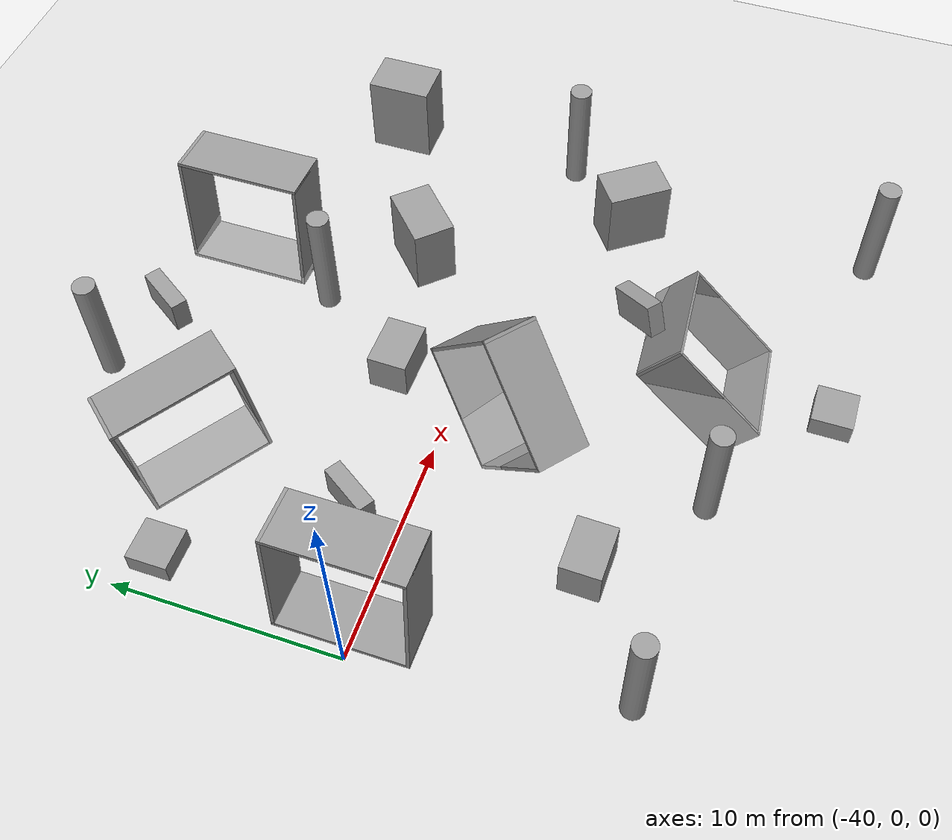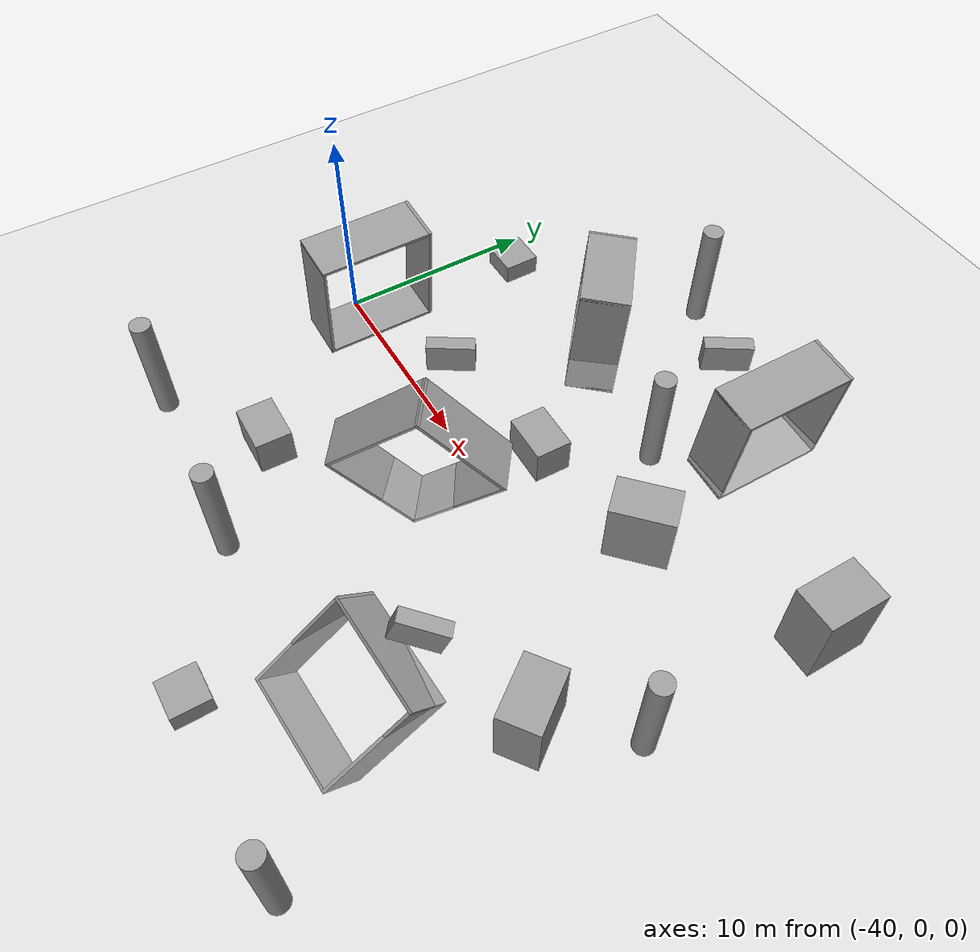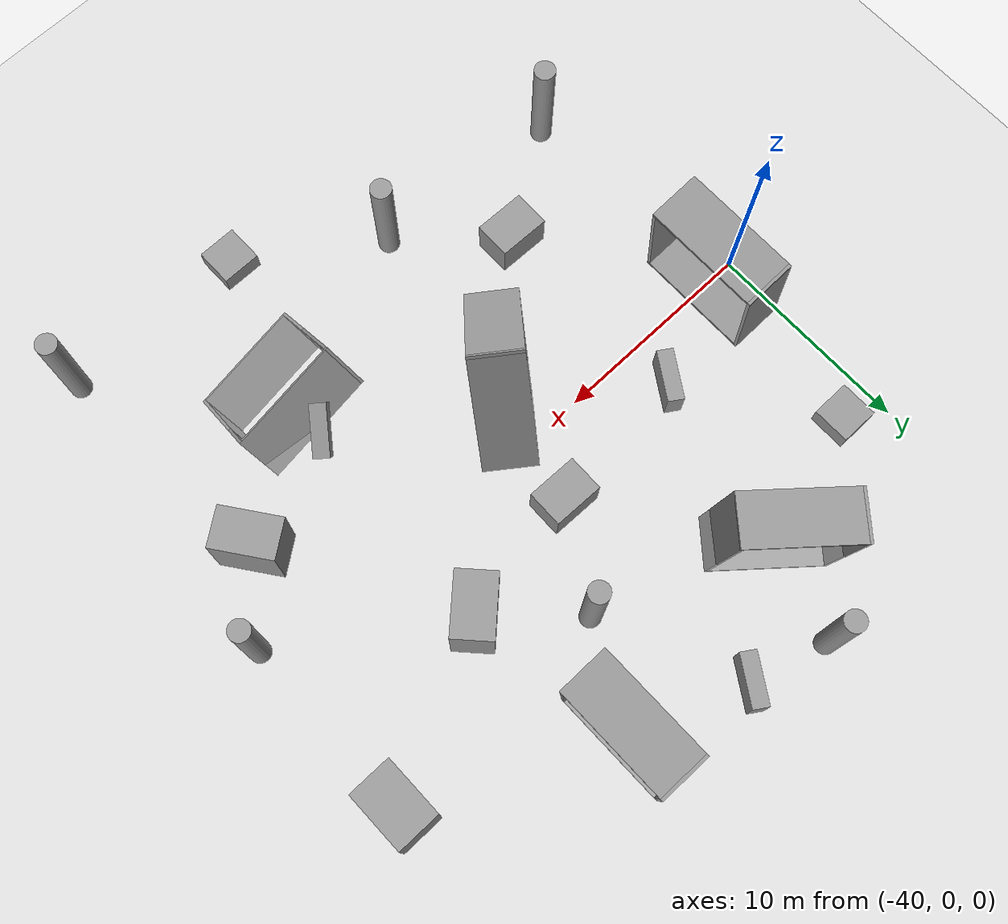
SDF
<sdf version="1.6">
 <world name="default">
  <model name="ground_plane">
   <static>1</static>
   <link name="link">
    <collision name="collision">
     <geometry><plane><normal>0 0 1</normal><size>100 100</size></plane></geometry>
     <surface><friction><ode><mu>100</mu><mu2>50</mu2></ode></friction></surface>
    </collision>
    <visual name="visual">
     <cast_shadows>0</cast_shadows>
     <geometry><plane><normal>0 0 1</normal><size>100 100</size></plane></geometry>
     <material>
      <script><uri>file://media/materials/scripts/gazebo.material</uri><name>Gazebo/Grey</name></script>
     </material>
    </visual>
   </link>
  </model>
  <model name="unit_box_2">
   <pose>-12.2461 7.859 1.95434 1e-06 0 -0.00036</pose>
   <link name="link">
    <inertial>
     <mass>1</mass>
     <inertia>
      <ixx>0.166667</ixx>
      <ixy>0</ixy>
      <ixz>0</ixz>
      <iyy>0.166667</iyy>
      <iyz>0</iyz>
      <izz>0.166667</izz>
     </inertia>
    </inertial>
    <collision name="collision"><geometry><box><size>2.10727 2.95919 3.90868</size></box></geometry></collision>
    <visual name="visual">
     <geometry><box><size>2.10727 2.95919 3.90868</size></box></geometry>
     <material>
      <script><name>Gazebo/Grey</name><uri>file://media/materials/scripts/gazebo.material</uri></script>
     </material>
    </visual>
   </link>
  </model>
  <model name="unit_box_2_clone_1">
   <pose>-15.0529 -4.60285 1.66336 1e-06 -0 0.631429</pose>
   <link name="link">
    <inertial>
     <mass>1</mass>
     <inertia>
      <ixx>0.166667</ixx>
      <ixy>0</ixy>
      <ixz>0</ixz>
      <iyy>0.166667</iyy>
      <iyz>0</iyz>
      <izz>0.166667</izz>
     </inertia>
    </inertial>
    <collision name="collision"><geometry><box><size>1.91266 2.95919 3.32673</size></box></geometry></collision>
    <visual name="visual">
     <geometry><box><size>1.91266 2.95919 3.32673</size></box></geometry>
     <material>
      <script><name>Gazebo/Grey</name><uri>file://media/materials/scripts/gazebo.material</uri></script>
     </material>
    </visual>
   </link>
  </model>
  <model name="unit_cylinder_clone_9_clone_5_clone">
   <pose>-12.241 -1.09471 2.75253 0 -0 0.004218</pose>
   <link name="link">
    <inertial>
     <mass>1</mass>
     <inertia><ixx>0.145833</ixx><ixy>0</ixy><ixz>0</ixz><iyy>0.145833</iyy><iyz>0</iyz><izz>0.125</izz></inertia>
    </inertial>
    <collision name="collision">
     <geometry><cylinder><radius>0.5</radius><length>5.50507</length></cylinder></geometry>
    </collision>
    <visual name="visual">
     <geometry><cylinder><radius>0.5</radius><length>5.50507</length></cylinder></geometry>
     <material>
      <script><name>Gazebo/Grey</name><uri>file://media/materials/scripts/gazebo.material</uri></script>
     </material>
    </visual>
   </link>
  </model>
  <model name="vRoom_clone_3_clone_clone_9_clone_2_clone_0">
   <link name="Wall_0">
    <pose>-2.8 -0 -1e-06 -0 -0 -1.5708</pose>
    <velocity_decay><linear>0</linear><angular>0</angular></velocity_decay>
    <visual name="Wall_0_Visual">
     <pose>0 0 1.25 0 -0 0</pose>
     <geometry><box><size>5.75 0.15 2.5</size></box></geometry>
     <material>
      <script><uri>file://media/materials/scripts/gazebo.material</uri><name>Gazebo/Grey</name></script>
      <ambient>1 1 1 1</ambient>
     </material>
    </visual>
    <collision name="Wall_0_Collision">
     <pose>0 0 1.25 0 -0 0</pose>
     <geometry><box><size>5.75 0.15 2.5</size></box></geometry>
     <surface>
      <friction>
       <ode><mu>1</mu><mu2>1</mu2><fdir1>0 0 0</fdir1><slip1>0</slip1><slip2>0</slip2></ode>
       <torsional>
        <coefficient>1</coefficient>
        <patch_radius>0</patch_radius>
        <surface_radius>0</surface_radius>
        <use_patch_radius>1</use_patch_radius>
        <ode><slip>0</slip></ode>
       </torsional>
      </friction>
      <bounce><restitution_coefficient>0</restitution_coefficient><threshold>1e+06</threshold></bounce>
      <contact>
       <collide_without_contact>0</collide_without_contact>
       <collide_without_contact_bitmask>1</collide_without_contact_bitmask>
       <collide_bitmask>1</collide_bitmask>
       <ode>
        <soft_cfm>0</soft_cfm>
        <soft_erp>0.2</soft_erp>
        <kp>1e+13</kp>
        <kd>1</kd>
        <max_vel>0.01</max_vel>
        <min_depth>0</min_depth>
       </ode>
       <bullet>
        <split_impulse>1</split_impulse>
        <split_impulse_penetration_threshold>-0.01</split_impulse_penetration_threshold>
        <soft_cfm>0</soft_cfm>
        <soft_erp>0.2</soft_erp>
        <kp>1e+13</kp>
        <kd>1</kd>
       </bullet>
      </contact>
     </surface>
    </collision>
   </link>
   <link name="Wall_1">
    <pose>2e-06 -2.8 2e-06 0 -0 0</pose>
    <velocity_decay><linear>0</linear><angular>0</angular></velocity_decay>
    <visual name="Wall_1_Visual">
     <pose>0 0 1.25 0 -0 0</pose>
     <geometry><box><size>5.75 0.15 2.5</size></box></geometry>
     <material>
      <script><uri>file://media/materials/scripts/gazebo.material</uri><name>Gazebo/Grey</name></script>
      <ambient>1 1 1 1</ambient>
     </material>
    </visual>
    <collision name="Wall_1_Collision">
     <pose>0 0 1.25 0 -0 0</pose>
     <geometry><box><size>5.75 0.15 2.5</size></box></geometry>
     <surface>
      <friction>
       <ode><mu>1</mu><mu2>1</mu2><fdir1>0 0 0</fdir1><slip1>0</slip1><slip2>0</slip2></ode>
       <torsional>
        <coefficient>1</coefficient>
        <patch_radius>0</patch_radius>
        <surface_radius>0</surface_radius>
        <use_patch_radius>1</use_patch_radius>
        <ode><slip>0</slip></ode>
       </torsional>
      </friction>
      <bounce><restitution_coefficient>0</restitution_coefficient><threshold>1e+06</threshold></bounce>
      <contact>
       <collide_without_contact>0</collide_without_contact>
       <collide_without_contact_bitmask>1</collide_without_contact_bitmask>
       <collide_bitmask>1</collide_bitmask>
       <ode>
        <soft_cfm>0</soft_cfm>
        <soft_erp>0.2</soft_erp>
        <kp>1e+13</kp>
        <kd>1</kd>
        <max_vel>0.01</max_vel>
        <min_depth>0</min_depth>
       </ode>
       <bullet>
        <split_impulse>1</split_impulse>
        <split_impulse_penetration_threshold>-0.01</split_impulse_penetration_threshold>
        <soft_cfm>0</soft_cfm>
        <soft_erp>0.2</soft_erp>
        <kp>1e+13</kp>
        <kd>1</kd>
       </bullet>
      </contact>
     </surface>
    </collision>
   </link>
   <link name="Wall_2">
    <pose>2.8 0 1e-06 0 -0 1.5708</pose>
    <velocity_decay><linear>0</linear><angular>0</angular></velocity_decay>
    <visual name="Wall_2_Visual">
     <pose>0 0 1.25 0 -0 0</pose>
     <geometry><box><size>5.75 0.15 2.5</size></box></geometry>
     <material>
      <script><uri>file://media/materials/scripts/gazebo.material</uri><name>Gazebo/Grey</name></script>
      <ambient>1 1 1 1</ambient>
     </material>
    </visual>
    <collision name="Wall_2_Collision">
     <pose>0 0 1.25 0 -0 0</pose>
     <geometry><box><size>5.75 0.15 2.5</size></box></geometry>
     <surface>
      <friction>
       <ode><mu>1</mu><mu2>1</mu2><fdir1>0 0 0</fdir1><slip1>0</slip1><slip2>0</slip2></ode>
       <torsional>
        <coefficient>1</coefficient>
        <patch_radius>0</patch_radius>
        <surface_radius>0</surface_radius>
        <use_patch_radius>1</use_patch_radius>
        <ode><slip>0</slip></ode>
       </torsional>
      </friction>
      <bounce><restitution_coefficient>0</restitution_coefficient><threshold>1e+06</threshold></bounce>
      <contact>
       <collide_without_contact>0</collide_without_contact>
       <collide_without_contact_bitmask>1</collide_without_contact_bitmask>
       <collide_bitmask>1</collide_bitmask>
       <ode>
        <soft_cfm>0</soft_cfm>
        <soft_erp>0.2</soft_erp>
        <kp>1e+13</kp>
        <kd>1</kd>
        <max_vel>0.01</max_vel>
        <min_depth>0</min_depth>
       </ode>
       <bullet>
        <split_impulse>1</split_impulse>
        <split_impulse_penetration_threshold>-0.01</split_impulse_penetration_threshold>
        <soft_cfm>0</soft_cfm>
        <soft_erp>0.2</soft_erp>
        <kp>1e+13</kp>
        <kd>1</kd>
       </bullet>
      </contact>
     </surface>
    </collision>
   </link>
   <link name="Wall_3">
    <pose>-2e-06 2.8 -2e-06 0 -0 3.14159</pose>
    <velocity_decay><linear>0</linear><angular>0</angular></velocity_decay>
    <visual name="Wall_3_Visual">
     <pose>0 0 1.25 0 -0 0</pose>
     <geometry><box><size>5.75 0.15 2.5</size></box></geometry>
     <material>
      <script><uri>file://media/materials/scripts/gazebo.material</uri><name>Gazebo/Grey</name></script>
      <ambient>1 1 1 1</ambient>
     </material>
    </visual>
    <collision name="Wall_3_Collision">
     <pose>0 0 1.25 0 -0 0</pose>
     <geometry><box><size>5.75 0.15 2.5</size></box></geometry>
     <surface>
      <friction>
       <ode><mu>1</mu><mu2>1</mu2><fdir1>0 0 0</fdir1><slip1>0</slip1><slip2>0</slip2></ode>
       <torsional>
        <coefficient>1</coefficient>
        <patch_radius>0</patch_radius>
        <surface_radius>0</surface_radius>
        <use_patch_radius>1</use_patch_radius>
        <ode><slip>0</slip></ode>
       </torsional>
      </friction>
      <bounce><restitution_coefficient>0</restitution_coefficient><threshold>1e+06</threshold></bounce>
      <contact>
       <collide_without_contact>0</collide_without_contact>
       <collide_without_contact_bitmask>1</collide_without_contact_bitmask>
       <collide_bitmask>1</collide_bitmask>
       <ode>
        <soft_cfm>0</soft_cfm>
        <soft_erp>0.2</soft_erp>
        <kp>1e+13</kp>
        <kd>1</kd>
        <max_vel>0.01</max_vel>
        <min_depth>0</min_depth>
       </ode>
       <bullet>
        <split_impulse>1</split_impulse>
        <split_impulse_penetration_threshold>-0.01</split_impulse_penetration_threshold>
        <soft_cfm>0</soft_cfm>
        <soft_erp>0.2</soft_erp>
        <kp>1e+13</kp>
        <kd>1</kd>
       </bullet>
      </contact>
     </surface>
    </collision>
   </link>
   <static>1</static>
   <pose>-20.5223 -10.7964 -0.348991 2.375 -0.169882 -3.06562</pose>
  </model>
  <model name="vRoom_clone_3_clone_clone_9_clone_3">
   <link name="Wall_0">
    <pose>-2.8 -0 -1e-06 -0 -0 -1.5708</pose>
    <velocity_decay><linear>0</linear><angular>0</angular></velocity_decay>
    <visual name="Wall_0_Visual">
     <pose>0 0 1.25 0 -0 0</pose>
     <geometry><box><size>5.75 0.15 2.5</size></box></geometry>
     <material>
      <script><uri>file://media/materials/scripts/gazebo.material</uri><name>Gazebo/Grey</name></script>
      <ambient>1 1 1 1</ambient>
     </material>
    </visual>
    <collision name="Wall_0_Collision">
     <pose>0 0 1.25 0 -0 0</pose>
     <geometry><box><size>5.75 0.15 2.5</size></box></geometry>
     <surface>
      <friction>
       <ode><mu>1</mu><mu2>1</mu2><fdir1>0 0 0</fdir1><slip1>0</slip1><slip2>0</slip2></ode>
       <torsional>
        <coefficient>1</coefficient>
        <patch_radius>0</patch_radius>
        <surface_radius>0</surface_radius>
        <use_patch_radius>1</use_patch_radius>
        <ode><slip>0</slip></ode>
       </torsional>
      </friction>
      <bounce><restitution_coefficient>0</restitution_coefficient><threshold>1e+06</threshold></bounce>
      <contact>
       <collide_without_contact>0</collide_without_contact>
       <collide_without_contact_bitmask>1</collide_without_contact_bitmask>
       <collide_bitmask>1</collide_bitmask>
       <ode>
        <soft_cfm>0</soft_cfm>
        <soft_erp>0.2</soft_erp>
        <kp>1e+13</kp>
        <kd>1</kd>
        <max_vel>0.01</max_vel>
        <min_depth>0</min_depth>
       </ode>
       <bullet>
        <split_impulse>1</split_impulse>
        <split_impulse_penetration_threshold>-0.01</split_impulse_penetration_threshold>
        <soft_cfm>0</soft_cfm>
        <soft_erp>0.2</soft_erp>
        <kp>1e+13</kp>
        <kd>1</kd>
       </bullet>
      </contact>
     </surface>
    </collision>
   </link>
   <link name="Wall_1">
    <pose>2e-06 -2.8 2e-06 0 -0 0</pose>
    <velocity_decay><linear>0</linear><angular>0</angular></velocity_decay>
    <visual name="Wall_1_Visual">
     <pose>0 0 1.25 0 -0 0</pose>
     <geometry><box><size>5.75 0.15 2.5</size></box></geometry>
     <material>
      <script><uri>file://media/materials/scripts/gazebo.material</uri><name>Gazebo/Grey</name></script>
      <ambient>1 1 1 1</ambient>
     </material>
    </visual>
    <collision name="Wall_1_Collision">
     <pose>0 0 1.25 0 -0 0</pose>
     <geometry><box><size>5.75 0.15 2.5</size></box></geometry>
     <surface>
      <friction>
       <ode><mu>1</mu><mu2>1</mu2><fdir1>0 0 0</fdir1><slip1>0</slip1><slip2>0</slip2></ode>
       <torsional>
        <coefficient>1</coefficient>
        <patch_radius>0</patch_radius>
        <surface_radius>0</surface_radius>
        <use_patch_radius>1</use_patch_radius>
        <ode><slip>0</slip></ode>
       </torsional>
      </friction>
      <bounce><restitution_coefficient>0</restitution_coefficient><threshold>1e+06</threshold></bounce>
      <contact>
       <collide_without_contact>0</collide_without_contact>
       <collide_without_contact_bitmask>1</collide_without_contact_bitmask>
       <collide_bitmask>1</collide_bitmask>
       <ode>
        <soft_cfm>0</soft_cfm>
        <soft_erp>0.2</soft_erp>
        <kp>1e+13</kp>
        <kd>1</kd>
        <max_vel>0.01</max_vel>
        <min_depth>0</min_depth>
       </ode>
       <bullet>
        <split_impulse>1</split_impulse>
        <split_impulse_penetration_threshold>-0.01</split_impulse_penetration_threshold>
        <soft_cfm>0</soft_cfm>
        <soft_erp>0.2</soft_erp>
        <kp>1e+13</kp>
        <kd>1</kd>
       </bullet>
      </contact>
     </surface>
    </collision>
   </link>
   <link name="Wall_2">
    <pose>2.8 0 1e-06 0 -0 1.5708</pose>
    <velocity_decay><linear>0</linear><angular>0</angular></velocity_decay>
    <visual name="Wall_2_Visual">
     <pose>0 0 1.25 0 -0 0</pose>
     <geometry><box><size>5.75 0.15 2.5</size></box></geometry>
     <material>
      <script><uri>file://media/materials/scripts/gazebo.material</uri><name>Gazebo/Grey</name></script>
      <ambient>1 1 1 1</ambient>
     </material>
    </visual>
    <collision name="Wall_2_Collision">
     <pose>0 0 1.25 0 -0 0</pose>
     <geometry><box><size>5.75 0.15 2.5</size></box></geometry>
     <surface>
      <friction>
       <ode><mu>1</mu><mu2>1</mu2><fdir1>0 0 0</fdir1><slip1>0</slip1><slip2>0</slip2></ode>
       <torsional>
        <coefficient>1</coefficient>
        <patch_radius>0</patch_radius>
        <surface_radius>0</surface_radius>
        <use_patch_radius>1</use_patch_radius>
        <ode><slip>0</slip></ode>
       </torsional>
      </friction>
      <bounce><restitution_coefficient>0</restitution_coefficient><threshold>1e+06</threshold></bounce>
      <contact>
       <collide_without_contact>0</collide_without_contact>
       <collide_without_contact_bitmask>1</collide_without_contact_bitmask>
       <collide_bitmask>1</collide_bitmask>
       <ode>
        <soft_cfm>0</soft_cfm>
        <soft_erp>0.2</soft_erp>
        <kp>1e+13</kp>
        <kd>1</kd>
        <max_vel>0.01</max_vel>
        <min_depth>0</min_depth>
       </ode>
       <bullet>
        <split_impulse>1</split_impulse>
        <split_impulse_penetration_threshold>-0.01</split_impulse_penetration_threshold>
        <soft_cfm>0</soft_cfm>
        <soft_erp>0.2</soft_erp>
        <kp>1e+13</kp>
        <kd>1</kd>
       </bullet>
      </contact>
     </surface>
    </collision>
   </link>
   <link name="Wall_3">
    <pose>-2e-06 2.8 -2e-06 0 -0 3.14159</pose>
    <velocity_decay><linear>0</linear><angular>0</angular></velocity_decay>
    <visual name="Wall_3_Visual">
     <pose>0 0 1.25 0 -0 0</pose>
     <geometry><box><size>5.75 0.15 2.5</size></box></geometry>
     <material>
      <script><uri>file://media/materials/scripts/gazebo.material</uri><name>Gazebo/Grey</name></script>
      <ambient>1 1 1 1</ambient>
     </material>
    </visual>
    <collision name="Wall_3_Collision">
     <pose>0 0 1.25 0 -0 0</pose>
     <geometry><box><size>5.75 0.15 2.5</size></box></geometry>
     <surface>
      <friction>
       <ode><mu>1</mu><mu2>1</mu2><fdir1>0 0 0</fdir1><slip1>0</slip1><slip2>0</slip2></ode>
       <torsional>
        <coefficient>1</coefficient>
        <patch_radius>0</patch_radius>
        <surface_radius>0</surface_radius>
        <use_patch_radius>1</use_patch_radius>
        <ode><slip>0</slip></ode>
       </torsional>
      </friction>
      <bounce><restitution_coefficient>0</restitution_coefficient><threshold>1e+06</threshold></bounce>
      <contact>
       <collide_without_contact>0</collide_without_contact>
       <collide_without_contact_bitmask>1</collide_without_contact_bitmask>
       <collide_bitmask>1</collide_bitmask>
       <ode>
        <soft_cfm>0</soft_cfm>
        <soft_erp>0.2</soft_erp>
        <kp>1e+13</kp>
        <kd>1</kd>
        <max_vel>0.01</max_vel>
        <min_depth>0</min_depth>
       </ode>
       <bullet>
        <split_impulse>1</split_impulse>
        <split_impulse_penetration_threshold>-0.01</split_impulse_penetration_threshold>
        <soft_cfm>0</soft_cfm>
        <soft_erp>0.2</soft_erp>
        <kp>1e+13</kp>
        <kd>1</kd>
       </bullet>
      </contact>
     </surface>
    </collision>
   </link>
   <static>1</static>
   <pose>-20.1202 12.0479 2.16038 4e-06 -1.47998 -7e-06</pose>
  </model>
  <model name="vRoom_clone_3_clone_clone_9_clone_clone_0">
   <link name="Wall_0">
    <pose>-2.8 -0 -1e-06 -0 -0 -1.5708</pose>
    <velocity_decay><linear>0</linear><angular>0</angular></velocity_decay>
    <visual name="Wall_0_Visual">
     <pose>0 0 1.25 0 -0 0</pose>
     <geometry><box><size>5.75 0.15 2.5</size></box></geometry>
     <material>
      <script><uri>file://media/materials/scripts/gazebo.material</uri><name>Gazebo/Grey</name></script>
      <ambient>1 1 1 1</ambient>
     </material>
    </visual>
    <collision name="Wall_0_Collision">
     <pose>0 0 1.25 0 -0 0</pose>
     <geometry><box><size>5.75 0.15 2.5</size></box></geometry>
     <surface>
      <friction>
       <ode><mu>1</mu><mu2>1</mu2><fdir1>0 0 0</fdir1><slip1>0</slip1><slip2>0</slip2></ode>
       <torsional>
        <coefficient>1</coefficient>
        <patch_radius>0</patch_radius>
        <surface_radius>0</surface_radius>
        <use_patch_radius>1</use_patch_radius>
        <ode><slip>0</slip></ode>
       </torsional>
      </friction>
      <bounce><restitution_coefficient>0</restitution_coefficient><threshold>1e+06</threshold></bounce>
      <contact>
       <collide_without_contact>0</collide_without_contact>
       <collide_without_contact_bitmask>1</collide_without_contact_bitmask>
       <collide_bitmask>1</collide_bitmask>
       <ode>
        <soft_cfm>0</soft_cfm>
        <soft_erp>0.2</soft_erp>
        <kp>1e+13</kp>
        <kd>1</kd>
        <max_vel>0.01</max_vel>
        <min_depth>0</min_depth>
       </ode>
       <bullet>
        <split_impulse>1</split_impulse>
        <split_impulse_penetration_threshold>-0.01</split_impulse_penetration_threshold>
        <soft_cfm>0</soft_cfm>
        <soft_erp>0.2</soft_erp>
        <kp>1e+13</kp>
        <kd>1</kd>
       </bullet>
      </contact>
     </surface>
    </collision>
   </link>
   <link name="Wall_1">
    <pose>2e-06 -2.8 2e-06 0 -0 0</pose>
    <velocity_decay><linear>0</linear><angular>0</angular></velocity_decay>
    <visual name="Wall_1_Visual">
     <pose>0 0 1.25 0 -0 0</pose>
     <geometry><box><size>5.75 0.15 2.5</size></box></geometry>
     <material>
      <script><uri>file://media/materials/scripts/gazebo.material</uri><name>Gazebo/Grey</name></script>
      <ambient>1 1 1 1</ambient>
     </material>
    </visual>
    <collision name="Wall_1_Collision">
     <pose>0 0 1.25 0 -0 0</pose>
     <geometry><box><size>5.75 0.15 2.5</size></box></geometry>
     <surface>
      <friction>
       <ode><mu>1</mu><mu2>1</mu2><fdir1>0 0 0</fdir1><slip1>0</slip1><slip2>0</slip2></ode>
       <torsional>
        <coefficient>1</coefficient>
        <patch_radius>0</patch_radius>
        <surface_radius>0</surface_radius>
        <use_patch_radius>1</use_patch_radius>
        <ode><slip>0</slip></ode>
       </torsional>
      </friction>
      <bounce><restitution_coefficient>0</restitution_coefficient><threshold>1e+06</threshold></bounce>
      <contact>
       <collide_without_contact>0</collide_without_contact>
       <collide_without_contact_bitmask>1</collide_without_contact_bitmask>
       <collide_bitmask>1</collide_bitmask>
       <ode>
        <soft_cfm>0</soft_cfm>
        <soft_erp>0.2</soft_erp>
        <kp>1e+13</kp>
        <kd>1</kd>
        <max_vel>0.01</max_vel>
        <min_depth>0</min_depth>
       </ode>
       <bullet>
        <split_impulse>1</split_impulse>
        <split_impulse_penetration_threshold>-0.01</split_impulse_penetration_threshold>
        <soft_cfm>0</soft_cfm>
        <soft_erp>0.2</soft_erp>
        <kp>1e+13</kp>
        <kd>1</kd>
       </bullet>
      </contact>
     </surface>
    </collision>
   </link>
   <link name="Wall_2">
    <pose>2.8 0 1e-06 0 -0 1.5708</pose>
    <velocity_decay><linear>0</linear><angular>0</angular></velocity_decay>
    <visual name="Wall_2_Visual">
     <pose>0 0 1.25 0 -0 0</pose>
     <geometry><box><size>5.75 0.15 2.5</size></box></geometry>
     <material>
      <script><uri>file://media/materials/scripts/gazebo.material</uri><name>Gazebo/Grey</name></script>
      <ambient>1 1 1 1</ambient>
     </material>
    </visual>
    <collision name="Wall_2_Collision">
     <pose>0 0 1.25 0 -0 0</pose>
     <geometry><box><size>5.75 0.15 2.5</size></box></geometry>
     <surface>
      <friction>
       <ode><mu>1</mu><mu2>1</mu2><fdir1>0 0 0</fdir1><slip1>0</slip1><slip2>0</slip2></ode>
       <torsional>
        <coefficient>1</coefficient>
        <patch_radius>0</patch_radius>
        <surface_radius>0</surface_radius>
        <use_patch_radius>1</use_patch_radius>
        <ode><slip>0</slip></ode>
       </torsional>
      </friction>
      <bounce><restitution_coefficient>0</restitution_coefficient><threshold>1e+06</threshold></bounce>
      <contact>
       <collide_without_contact>0</collide_without_contact>
       <collide_without_contact_bitmask>1</collide_without_contact_bitmask>
       <collide_bitmask>1</collide_bitmask>
       <ode>
        <soft_cfm>0</soft_cfm>
        <soft_erp>0.2</soft_erp>
        <kp>1e+13</kp>
        <kd>1</kd>
        <max_vel>0.01</max_vel>
        <min_depth>0</min_depth>
       </ode>
       <bullet>
        <split_impulse>1</split_impulse>
        <split_impulse_penetration_threshold>-0.01</split_impulse_penetration_threshold>
        <soft_cfm>0</soft_cfm>
        <soft_erp>0.2</soft_erp>
        <kp>1e+13</kp>
        <kd>1</kd>
       </bullet>
      </contact>
     </surface>
    </collision>
   </link>
   <link name="Wall_3">
    <pose>-2e-06 2.8 -2e-06 0 -0 3.14159</pose>
    <velocity_decay><linear>0</linear><angular>0</angular></velocity_decay>
    <visual name="Wall_3_Visual">
     <pose>0 0 1.25 0 -0 0</pose>
     <geometry><box><size>5.75 0.15 2.5</size></box></geometry>
     <material>
      <script><uri>file://media/materials/scripts/gazebo.material</uri><name>Gazebo/Grey</name></script>
      <ambient>1 1 1 1</ambient>
     </material>
    </visual>
    <collision name="Wall_3_Collision">
     <pose>0 0 1.25 0 -0 0</pose>
     <geometry><box><size>5.75 0.15 2.5</size></box></geometry>
     <surface>
      <friction>
       <ode><mu>1</mu><mu2>1</mu2><fdir1>0 0 0</fdir1><slip1>0</slip1><slip2>0</slip2></ode>
       <torsional>
        <coefficient>1</coefficient>
        <patch_radius>0</patch_radius>
        <surface_radius>0</surface_radius>
        <use_patch_radius>1</use_patch_radius>
        <ode><slip>0</slip></ode>
       </torsional>
      </friction>
      <bounce><restitution_coefficient>0</restitution_coefficient><threshold>1e+06</threshold></bounce>
      <contact>
       <collide_without_contact>0</collide_without_contact>
       <collide_without_contact_bitmask>1</collide_without_contact_bitmask>
       <collide_bitmask>1</collide_bitmask>
       <ode>
        <soft_cfm>0</soft_cfm>
        <soft_erp>0.2</soft_erp>
        <kp>1e+13</kp>
        <kd>1</kd>
        <max_vel>0.01</max_vel>
        <min_depth>0</min_depth>
       </ode>
       <bullet>
        <split_impulse>1</split_impulse>
        <split_impulse_penetration_threshold>-0.01</split_impulse_penetration_threshold>
        <soft_cfm>0</soft_cfm>
        <soft_erp>0.2</soft_erp>
        <kp>1e+13</kp>
        <kd>1</kd>
       </bullet>
      </contact>
     </surface>
    </collision>
   </link>
   <static>1</static>
   <pose>-26.7767 -3.33195 2.16038 1.45974 -0.860248 -2.1368</pose>
  </model>
  <model name="vRoom_clone_3_clone_clone_9_clone_0_clone">
   <link name="Wall_0">
    <pose>-2.8 -0 -1e-06 -0 -0 -1.5708</pose>
    <velocity_decay><linear>0</linear><angular>0</angular></velocity_decay>
    <visual name="Wall_0_Visual">
     <pose>0 0 1.25 0 -0 0</pose>
     <geometry><box><size>5.75 0.15 2.5</size></box></geometry>
     <material>
      <script><uri>file://media/materials/scripts/gazebo.material</uri><name>Gazebo/Grey</name></script>
      <ambient>1 1 1 1</ambient>
     </material>
    </visual>
    <collision name="Wall_0_Collision">
     <pose>0 0 1.25 0 -0 0</pose>
     <geometry><box><size>5.75 0.15 2.5</size></box></geometry>
     <surface>
      <friction>
       <ode><mu>1</mu><mu2>1</mu2><fdir1>0 0 0</fdir1><slip1>0</slip1><slip2>0</slip2></ode>
       <torsional>
        <coefficient>1</coefficient>
        <patch_radius>0</patch_radius>
        <surface_radius>0</surface_radius>
        <use_patch_radius>1</use_patch_radius>
        <ode><slip>0</slip></ode>
       </torsional>
      </friction>
      <bounce><restitution_coefficient>0</restitution_coefficient><threshold>1e+06</threshold></bounce>
      <contact>
       <collide_without_contact>0</collide_without_contact>
       <collide_without_contact_bitmask>1</collide_without_contact_bitmask>
       <collide_bitmask>1</collide_bitmask>
       <ode>
        <soft_cfm>0</soft_cfm>
        <soft_erp>0.2</soft_erp>
        <kp>1e+13</kp>
        <kd>1</kd>
        <max_vel>0.01</max_vel>
        <min_depth>0</min_depth>
       </ode>
       <bullet>
        <split_impulse>1</split_impulse>
        <split_impulse_penetration_threshold>-0.01</split_impulse_penetration_threshold>
        <soft_cfm>0</soft_cfm>
        <soft_erp>0.2</soft_erp>
        <kp>1e+13</kp>
        <kd>1</kd>
       </bullet>
      </contact>
     </surface>
    </collision>
   </link>
   <link name="Wall_1">
    <pose>2e-06 -2.8 2e-06 0 -0 0</pose>
    <velocity_decay><linear>0</linear><angular>0</angular></velocity_decay>
    <visual name="Wall_1_Visual">
     <pose>0 0 1.25 0 -0 0</pose>
     <geometry><box><size>5.75 0.15 2.5</size></box></geometry>
     <material>
      <script><uri>file://media/materials/scripts/gazebo.material</uri><name>Gazebo/Grey</name></script>
      <ambient>1 1 1 1</ambient>
     </material>
    </visual>
    <collision name="Wall_1_Collision">
     <pose>0 0 1.25 0 -0 0</pose>
     <geometry><box><size>5.75 0.15 2.5</size></box></geometry>
     <surface>
      <friction>
       <ode><mu>1</mu><mu2>1</mu2><fdir1>0 0 0</fdir1><slip1>0</slip1><slip2>0</slip2></ode>
       <torsional>
        <coefficient>1</coefficient>
        <patch_radius>0</patch_radius>
        <surface_radius>0</surface_radius>
        <use_patch_radius>1</use_patch_radius>
        <ode><slip>0</slip></ode>
       </torsional>
      </friction>
      <bounce><restitution_coefficient>0</restitution_coefficient><threshold>1e+06</threshold></bounce>
      <contact>
       <collide_without_contact>0</collide_without_contact>
       <collide_without_contact_bitmask>1</collide_without_contact_bitmask>
       <collide_bitmask>1</collide_bitmask>
       <ode>
        <soft_cfm>0</soft_cfm>
        <soft_erp>0.2</soft_erp>
        <kp>1e+13</kp>
        <kd>1</kd>
        <max_vel>0.01</max_vel>
        <min_depth>0</min_depth>
       </ode>
       <bullet>
        <split_impulse>1</split_impulse>
        <split_impulse_penetration_threshold>-0.01</split_impulse_penetration_threshold>
        <soft_cfm>0</soft_cfm>
        <soft_erp>0.2</soft_erp>
        <kp>1e+13</kp>
        <kd>1</kd>
       </bullet>
      </contact>
     </surface>
    </collision>
   </link>
   <link name="Wall_2">
    <pose>2.8 0 1e-06 0 -0 1.5708</pose>
    <velocity_decay><linear>0</linear><angular>0</angular></velocity_decay>
    <visual name="Wall_2_Visual">
     <pose>0 0 1.25 0 -0 0</pose>
     <geometry><box><size>5.75 0.15 2.5</size></box></geometry>
     <material>
      <script><uri>file://media/materials/scripts/gazebo.material</uri><name>Gazebo/Grey</name></script>
      <ambient>1 1 1 1</ambient>
     </material>
    </visual>
    <collision name="Wall_2_Collision">
     <pose>0 0 1.25 0 -0 0</pose>
     <geometry><box><size>5.75 0.15 2.5</size></box></geometry>
     <surface>
      <friction>
       <ode><mu>1</mu><mu2>1</mu2><fdir1>0 0 0</fdir1><slip1>0</slip1><slip2>0</slip2></ode>
       <torsional>
        <coefficient>1</coefficient>
        <patch_radius>0</patch_radius>
        <surface_radius>0</surface_radius>
        <use_patch_radius>1</use_patch_radius>
        <ode><slip>0</slip></ode>
       </torsional>
      </friction>
      <bounce><restitution_coefficient>0</restitution_coefficient><threshold>1e+06</threshold></bounce>
      <contact>
       <collide_without_contact>0</collide_without_contact>
       <collide_without_contact_bitmask>1</collide_without_contact_bitmask>
       <collide_bitmask>1</collide_bitmask>
       <ode>
        <soft_cfm>0</soft_cfm>
        <soft_erp>0.2</soft_erp>
        <kp>1e+13</kp>
        <kd>1</kd>
        <max_vel>0.01</max_vel>
        <min_depth>0</min_depth>
       </ode>
       <bullet>
        <split_impulse>1</split_impulse>
        <split_impulse_penetration_threshold>-0.01</split_impulse_penetration_threshold>
        <soft_cfm>0</soft_cfm>
        <soft_erp>0.2</soft_erp>
        <kp>1e+13</kp>
        <kd>1</kd>
       </bullet>
      </contact>
     </surface>
    </collision>
   </link>
   <link name="Wall_3">
    <pose>-2e-06 2.8 -2e-06 0 -0 3.14159</pose>
    <velocity_decay><linear>0</linear><angular>0</angular></velocity_decay>
    <visual name="Wall_3_Visual">
     <pose>0 0 1.25 0 -0 0</pose>
     <geometry><box><size>5.75 0.15 2.5</size></box></geometry>
     <material>
      <script><uri>file://media/materials/scripts/gazebo.material</uri><name>Gazebo/Grey</name></script>
      <ambient>1 1 1 1</ambient>
     </material>
    </visual>
    <collision name="Wall_3_Collision">
     <pose>0 0 1.25 0 -0 0</pose>
     <geometry><box><size>5.75 0.15 2.5</size></box></geometry>
     <surface>
      <friction>
       <ode><mu>1</mu><mu2>1</mu2><fdir1>0 0 0</fdir1><slip1>0</slip1><slip2>0</slip2></ode>
       <torsional>
        <coefficient>1</coefficient>
        <patch_radius>0</patch_radius>
        <surface_radius>0</surface_radius>
        <use_patch_radius>1</use_patch_radius>
        <ode><slip>0</slip></ode>
       </torsional>
      </friction>
      <bounce><restitution_coefficient>0</restitution_coefficient><threshold>1e+06</threshold></bounce>
      <contact>
       <collide_without_contact>0</collide_without_contact>
       <collide_without_contact_bitmask>1</collide_without_contact_bitmask>
       <collide_bitmask>1</collide_bitmask>
       <ode>
        <soft_cfm>0</soft_cfm>
        <soft_erp>0.2</soft_erp>
        <kp>1e+13</kp>
        <kd>1</kd>
        <max_vel>0.01</max_vel>
        <min_depth>0</min_depth>
       </ode>
       <bullet>
        <split_impulse>1</split_impulse>
        <split_impulse_penetration_threshold>-0.01</split_impulse_penetration_threshold>
        <soft_cfm>0</soft_cfm>
        <soft_erp>0.2</soft_erp>
        <kp>1e+13</kp>
        <kd>1</kd>
       </bullet>
      </contact>
     </surface>
    </collision>
   </link>
   <static>1</static>
   <pose>-31.5829 11.4901 0.534522 -1.11103 -1.4406 1.99895</pose>
  </model>
  <model name="unit_cylinder_clone_7_clone_1_clone_5">
   <pose>-23.6727 7.47545 2.75253 0 -0 0.003645</pose>
   <link name="link">
    <inertial>
     <mass>1</mass>
     <inertia><ixx>0.145833</ixx><ixy>0</ixy><ixz>0</ixz><iyy>0.145833</iyy><iyz>0</iyz><izz>0.125</izz></inertia>
    </inertial>
    <collision name="collision">
     <geometry><cylinder><radius>0.5</radius><length>5.50507</length></cylinder></geometry>
    </collision>
    <visual name="visual">
     <geometry><cylinder><radius>0.5</radius><length>5.50507</length></cylinder></geometry>
     <material>
      <script><name>Gazebo/Grey</name><uri>file://media/materials/scripts/gazebo.material</uri></script>
     </material>
    </visual>
   </link>
  </model>
  <model name="unit_cylinder_clone_7_clone_1_clone_6">
   <pose>-29.1088 -11.6646 2.75253 0 -0 0.003481</pose>
   <link name="link">
    <inertial>
     <mass>1</mass>
     <inertia><ixx>0.145833</ixx><ixy>0</ixy><ixz>0</ixz><iyy>0.145833</iyy><iyz>0</iyz><izz>0.125</izz></inertia>
    </inertial>
    <collision name="collision">
     <geometry><cylinder><radius>0.5</radius><length>5.50507</length></cylinder></geometry>
    </collision>
    <visual name="visual">
     <geometry><cylinder><radius>0.5</radius><length>5.50507</length></cylinder></geometry>
     <material>
      <script><name>Gazebo/Grey</name><uri>file://media/materials/scripts/gazebo.material</uri></script>
     </material>
    </visual>
   </link>
  </model>
  <model name="unit_box_clone_clone_clone_0">
   <pose>-33.581 2.26352 0.788226 -7e-06 0 -0.574153</pose>
   <link name="link">
    <inertial>
     <mass>1</mass>
     <inertia>
      <ixx>0.166667</ixx>
      <ixy>0</ixy>
      <ixz>0</ixz>
      <iyy>0.166667</iyy>
      <iyz>0</iyz>
      <izz>0.166667</izz>
     </inertia>
    </inertial>
    <collision name="collision"><geometry><box><size>0.770315 2.44518 1.57647</size></box></geometry></collision>
    <visual name="visual">
     <geometry><box><size>0.770315 2.44518 1.57647</size></box></geometry>
     <material>
      <script><name>Gazebo/Grey</name><uri>file://media/materials/scripts/gazebo.material</uri></script>
     </material>
    </visual>
   </link>
  </model>
  <model name="unit_box_clone_clone_clone_1">
   <pose>-20.5471 -6.51745 1.14171 -0.329818 0 -0.669043</pose>
   <link name="link">
    <inertial>
     <mass>1</mass>
     <inertia>
      <ixx>0.166667</ixx>
      <ixy>0</ixy>
      <ixz>0</ixz>
      <iyy>0.166667</iyy>
      <iyz>0</iyz>
      <izz>0.166667</izz>
     </inertia>
    </inertial>
    <collision name="collision"><geometry><box><size>0.770315 2.44518 1.57647</size></box></geometry></collision>
    <visual name="visual">
     <geometry><box><size>0.770315 2.44518 1.57647</size></box></geometry>
     <material>
      <script><name>Gazebo/Grey</name><uri>file://media/materials/scripts/gazebo.material</uri></script>
     </material>
    </visual>
   </link>
  </model>
  <model name="unit_box_clone_clone_clone_clone">
   <pose>-26.5862 14.1681 0.788235 -0 -0 -0.57475</pose>
   <link name="link">
    <inertial>
     <mass>1</mass>
     <inertia>
      <ixx>0.166667</ixx>
      <ixy>0</ixy>
      <ixz>0</ixz>
      <iyy>0.166667</iyy>
      <iyz>0</iyz>
      <izz>0.166667</izz>
     </inertia>
    </inertial>
    <collision name="collision"><geometry><box><size>0.770315 2.44518 1.57647</size></box></geometry></collision>
    <visual name="visual">
     <geometry><box><size>0.770315 2.44518 1.57647</size></box></geometry>
     <material>
      <script><name>Gazebo/Grey</name><uri>file://media/materials/scripts/gazebo.material</uri></script>
     </material>
    </visual>
   </link>
  </model>
  <model name="unit_box_clone_1_clone">
   <pose>-33.3535 -7.80233 0.926301 0 5e-06 1.55039</pose>
   <link name="link">
    <inertial>
     <mass>1</mass>
     <inertia>
      <ixx>0.166667</ixx>
      <ixy>0</ixy>
      <ixz>0</ixz>
      <iyy>0.166667</iyy>
      <iyz>0</iyz>
      <izz>0.166667</izz>
     </inertia>
    </inertial>
    <collision name="collision"><geometry><box><size>1.76997 2.44518 1.85261</size></box></geometry></collision>
    <visual name="visual">
     <geometry><box><size>1.76997 2.44518 1.85261</size></box></geometry>
     <material>
      <script><name>Gazebo/Grey</name><uri>file://media/materials/scripts/gazebo.material</uri></script>
     </material>
    </visual>
   </link>
  </model>
  <model name="unit_box_clone_1_clone_0">
   <pose>-26.3814 2.97375 0.926301 0 -5e-06 1.55038</pose>
   <link name="link">
    <inertial>
     <mass>1</mass>
     <inertia>
      <ixx>0.166667</ixx>
      <ixy>0</ixy>
      <ixz>0</ixz>
      <iyy>0.166667</iyy>
      <iyz>0</iyz>
      <izz>0.166667</izz>
     </inertia>
    </inertial>
    <collision name="collision"><geometry><box><size>1.76997 2.44518 1.85261</size></box></geometry></collision>
    <visual name="visual">
     <geometry><box><size>1.76997 2.44518 1.85261</size></box></geometry>
     <material>
      <script><name>Gazebo/Grey</name><uri>file://media/materials/scripts/gazebo.material</uri></script>
     </material>
    </visual>
   </link>
  </model>
  <model name="unit_cylinder_clone_7_clone_1_clone_clone">
   <pose>-14.0788 -15.8398 2.75253 0 -0 0.003515</pose>
   <link name="link">
    <inertial>
     <mass>1</mass>
     <inertia><ixx>0.145833</ixx><ixy>0</ixy><ixz>0</ixz><iyy>0.145833</iyy><iyz>0</iyz><izz>0.125</izz></inertia>
    </inertial>
    <collision name="collision">
     <geometry><cylinder><radius>0.5</radius><length>5.50507</length></cylinder></geometry>
    </collision>
    <visual name="visual">
     <geometry><cylinder><radius>0.5</radius><length>5.50507</length></cylinder></geometry>
     <material>
      <script><name>Gazebo/Grey</name><uri>file://media/materials/scripts/gazebo.material</uri></script>
     </material>
    </visual>
   </link>
  </model>
  <model name="unit_cylinder_clone_7_clone_1_clone_clone_0">
   <pose>-30.2558 15.194 2.75253 0 -0 0.003466</pose>
   <link name="link">
    <inertial>
     <mass>1</mass>
     <inertia><ixx>0.145833</ixx><ixy>0</ixy><ixz>0</ixz><iyy>0.145833</iyy><iyz>0</iyz><izz>0.125</izz></inertia>
    </inertial>
    <collision name="collision">
     <geometry><cylinder><radius>0.5</radius><length>5.50507</length></cylinder></geometry>
    </collision>
    <visual name="visual">
     <geometry><cylinder><radius>0.5</radius><length>5.50507</length></cylinder></geometry>
     <material>
      <script><name>Gazebo/Grey</name><uri>file://media/materials/scripts/gazebo.material</uri></script>
     </material>
    </visual>
   </link>
  </model>
  <model name="vRoom_clone_3_clone_clone_9_clone_1_clone">
   <link name="Wall_0">
    <pose>-2.8 -0 -1e-06 -0 -0 -1.5708</pose>
    <velocity_decay><linear>0</linear><angular>0</angular></velocity_decay>
    <visual name="Wall_0_Visual">
     <pose>0 0 1.25 0 -0 0</pose>
     <geometry><box><size>5.75 0.15 2.5</size></box></geometry>
     <material>
      <script><uri>file://media/materials/scripts/gazebo.material</uri><name>Gazebo/Grey</name></script>
      <ambient>1 1 1 1</ambient>
     </material>
    </visual>
    <collision name="Wall_0_Collision">
     <pose>0 0 1.25 0 -0 0</pose>
     <geometry><box><size>5.75 0.15 2.5</size></box></geometry>
     <surface>
      <friction>
       <ode><mu>1</mu><mu2>1</mu2><fdir1>0 0 0</fdir1><slip1>0</slip1><slip2>0</slip2></ode>
       <torsional>
        <coefficient>1</coefficient>
        <patch_radius>0</patch_radius>
        <surface_radius>0</surface_radius>
        <use_patch_radius>1</use_patch_radius>
        <ode><slip>0</slip></ode>
       </torsional>
      </friction>
      <bounce><restitution_coefficient>0</restitution_coefficient><threshold>1e+06</threshold></bounce>
      <contact>
       <collide_without_contact>0</collide_without_contact>
       <collide_without_contact_bitmask>1</collide_without_contact_bitmask>
       <collide_bitmask>1</collide_bitmask>
       <ode>
        <soft_cfm>0</soft_cfm>
        <soft_erp>0.2</soft_erp>
        <kp>1e+13</kp>
        <kd>1</kd>
        <max_vel>0.01</max_vel>
        <min_depth>0</min_depth>
       </ode>
       <bullet>
        <split_impulse>1</split_impulse>
        <split_impulse_penetration_threshold>-0.01</split_impulse_penetration_threshold>
        <soft_cfm>0</soft_cfm>
        <soft_erp>0.2</soft_erp>
        <kp>1e+13</kp>
        <kd>1</kd>
       </bullet>
      </contact>
     </surface>
    </collision>
   </link>
   <link name="Wall_1">
    <pose>2e-06 -2.8 2e-06 0 -0 0</pose>
    <velocity_decay><linear>0</linear><angular>0</angular></velocity_decay>
    <visual name="Wall_1_Visual">
     <pose>0 0 1.25 0 -0 0</pose>
     <geometry><box><size>5.75 0.15 2.5</size></box></geometry>
     <material>
      <script><uri>file://media/materials/scripts/gazebo.material</uri><name>Gazebo/Grey</name></script>
      <ambient>1 1 1 1</ambient>
     </material>
    </visual>
    <collision name="Wall_1_Collision">
     <pose>0 0 1.25 0 -0 0</pose>
     <geometry><box><size>5.75 0.15 2.5</size></box></geometry>
     <surface>
      <friction>
       <ode><mu>1</mu><mu2>1</mu2><fdir1>0 0 0</fdir1><slip1>0</slip1><slip2>0</slip2></ode>
       <torsional>
        <coefficient>1</coefficient>
        <patch_radius>0</patch_radius>
        <surface_radius>0</surface_radius>
        <use_patch_radius>1</use_patch_radius>
        <ode><slip>0</slip></ode>
       </torsional>
      </friction>
      <bounce><restitution_coefficient>0</restitution_coefficient><threshold>1e+06</threshold></bounce>
      <contact>
       <collide_without_contact>0</collide_without_contact>
       <collide_without_contact_bitmask>1</collide_without_contact_bitmask>
       <collide_bitmask>1</collide_bitmask>
       <ode>
        <soft_cfm>0</soft_cfm>
        <soft_erp>0.2</soft_erp>
        <kp>1e+13</kp>
        <kd>1</kd>
        <max_vel>0.01</max_vel>
        <min_depth>0</min_depth>
       </ode>
       <bullet>
        <split_impulse>1</split_impulse>
        <split_impulse_penetration_threshold>-0.01</split_impulse_penetration_threshold>
        <soft_cfm>0</soft_cfm>
        <soft_erp>0.2</soft_erp>
        <kp>1e+13</kp>
        <kd>1</kd>
       </bullet>
      </contact>
     </surface>
    </collision>
   </link>
   <link name="Wall_2">
    <pose>2.8 0 1e-06 0 -0 1.5708</pose>
    <velocity_decay><linear>0</linear><angular>0</angular></velocity_decay>
    <visual name="Wall_2_Visual">
     <pose>0 0 1.25 0 -0 0</pose>
     <geometry><box><size>5.75 0.15 2.5</size></box></geometry>
     <material>
      <script><uri>file://media/materials/scripts/gazebo.material</uri><name>Gazebo/Grey</name></script>
      <ambient>1 1 1 1</ambient>
     </material>
    </visual>
    <collision name="Wall_2_Collision">
     <pose>0 0 1.25 0 -0 0</pose>
     <geometry><box><size>5.75 0.15 2.5</size></box></geometry>
     <surface>
      <friction>
       <ode><mu>1</mu><mu2>1</mu2><fdir1>0 0 0</fdir1><slip1>0</slip1><slip2>0</slip2></ode>
       <torsional>
        <coefficient>1</coefficient>
        <patch_radius>0</patch_radius>
        <surface_radius>0</surface_radius>
        <use_patch_radius>1</use_patch_radius>
        <ode><slip>0</slip></ode>
       </torsional>
      </friction>
      <bounce><restitution_coefficient>0</restitution_coefficient><threshold>1e+06</threshold></bounce>
      <contact>
       <collide_without_contact>0</collide_without_contact>
       <collide_without_contact_bitmask>1</collide_without_contact_bitmask>
       <collide_bitmask>1</collide_bitmask>
       <ode>
        <soft_cfm>0</soft_cfm>
        <soft_erp>0.2</soft_erp>
        <kp>1e+13</kp>
        <kd>1</kd>
        <max_vel>0.01</max_vel>
        <min_depth>0</min_depth>
       </ode>
       <bullet>
        <split_impulse>1</split_impulse>
        <split_impulse_penetration_threshold>-0.01</split_impulse_penetration_threshold>
        <soft_cfm>0</soft_cfm>
        <soft_erp>0.2</soft_erp>
        <kp>1e+13</kp>
        <kd>1</kd>
       </bullet>
      </contact>
     </surface>
    </collision>
   </link>
   <link name="Wall_3">
    <pose>-2e-06 2.8 -2e-06 0 -0 3.14159</pose>
    <velocity_decay><linear>0</linear><angular>0</angular></velocity_decay>
    <visual name="Wall_3_Visual">
     <pose>0 0 1.25 0 -0 0</pose>
     <geometry><box><size>5.75 0.15 2.5</size></box></geometry>
     <material>
      <script><uri>file://media/materials/scripts/gazebo.material</uri><name>Gazebo/Grey</name></script>
      <ambient>1 1 1 1</ambient>
     </material>
    </visual>
    <collision name="Wall_3_Collision">
     <pose>0 0 1.25 0 -0 0</pose>
     <geometry><box><size>5.75 0.15 2.5</size></box></geometry>
     <surface>
      <friction>
       <ode><mu>1</mu><mu2>1</mu2><fdir1>0 0 0</fdir1><slip1>0</slip1><slip2>0</slip2></ode>
       <torsional>
        <coefficient>1</coefficient>
        <patch_radius>0</patch_radius>
        <surface_radius>0</surface_radius>
        <use_patch_radius>1</use_patch_radius>
        <ode><slip>0</slip></ode>
       </torsional>
      </friction>
      <bounce><restitution_coefficient>0</restitution_coefficient><threshold>1e+06</threshold></bounce>
      <contact>
       <collide_without_contact>0</collide_without_contact>
       <collide_without_contact_bitmask>1</collide_without_contact_bitmask>
       <collide_bitmask>1</collide_bitmask>
       <ode>
        <soft_cfm>0</soft_cfm>
        <soft_erp>0.2</soft_erp>
        <kp>1e+13</kp>
        <kd>1</kd>
        <max_vel>0.01</max_vel>
        <min_depth>0</min_depth>
       </ode>
       <bullet>
        <split_impulse>1</split_impulse>
        <split_impulse_penetration_threshold>-0.01</split_impulse_penetration_threshold>
        <soft_cfm>0</soft_cfm>
        <soft_erp>0.2</soft_erp>
        <kp>1e+13</kp>
        <kd>1</kd>
       </bullet>
      </contact>
     </surface>
    </collision>
   </link>
   <static>1</static>
   <pose>-36.9566 0.228058 3.0326 4e-06 -1.47998 -7e-06</pose>
  </model>
  <model name="unit_box_1_clone_clone">
   <pose>-38.2042 8.72776 0.499994 -7e-06 -0 0</pose>
   <link name="link">
    <inertial>
     <mass>1</mass>
     <inertia>
      <ixx>0.166667</ixx>
      <ixy>0</ixy>
      <ixz>0</ixz>
      <iyy>0.166667</iyy>
      <iyz>0</iyz>
      <izz>0.166667</izz>
     </inertia>
    </inertial>
    <collision name="collision"><geometry><box><size>1.86589 1.81745 1</size></box></geometry></collision>
    <visual name="visual">
     <geometry><box><size>1.86589 1.81745 1</size></box></geometry>
     <material>
      <script><name>Gazebo/Grey</name><uri>file://media/materials/scripts/gazebo.material</uri></script>
     </material>
    </visual>
   </link>
  </model>
  <model name="unit_box_1_clone_clone_0">
   <pose>-23.0249 -15.8554 0.49999 1.1e-05 -0 2e-06</pose>
   <link name="link">
    <inertial>
     <mass>1</mass>
     <inertia>
      <ixx>0.166667</ixx>
      <ixy>0</ixy>
      <ixz>0</ixz>
      <iyy>0.166667</iyy>
      <iyz>0</iyz>
      <izz>0.166667</izz>
     </inertia>
    </inertial>
    <collision name="collision"><geometry><box><size>1.86589 1.81745 1</size></box></geometry></collision>
    <visual name="visual">
     <geometry><box><size>1.86589 1.81745 1</size></box></geometry>
     <material>
      <script><name>Gazebo/Grey</name><uri>file://media/materials/scripts/gazebo.material</uri></script>
     </material>
    </visual>
   </link>
  </model>
  <model name="unit_cylinder_clone_7_clone_1_clone_2_clone">
   <pose>-38.3431 -11.0313 2.75253 0 -0 0.00313</pose>
   <link name="link">
    <inertial>
     <mass>1</mass>
     <inertia><ixx>0.145833</ixx><ixy>0</ixy><ixz>0</ixz><iyy>0.145833</iyy><iyz>0</iyz><izz>0.125</izz></inertia>
    </inertial>
    <collision name="collision">
     <geometry><cylinder><radius>0.5</radius><length>5.50507</length></cylinder></geometry>
    </collision>
    <visual name="visual">
     <geometry><cylinder><radius>0.5</radius><length>5.50507</length></cylinder></geometry>
     <material>
      <script><name>Gazebo/Grey</name><uri>file://media/materials/scripts/gazebo.material</uri></script>
     </material>
    </visual>
   </link>
  </model>
  <model name="unit_box_2_clone_1_clone">
   <pose>-19.9715 4.13837 1.66336 -1e-06 -0 -0.81427</pose>
   <link name="link">
    <inertial>
     <mass>1</mass>
     <inertia>
      <ixx>0.166667</ixx>
      <ixy>0</ixy>
      <ixz>0</ixz>
      <iyy>0.166667</iyy>
      <iyz>0</iyz>
      <izz>0.166667</izz>
     </inertia>
    </inertial>
    <collision name="collision"><geometry><box><size>1.91265 2.95919 3.32673</size></box></geometry></collision>
    <visual name="visual">
     <geometry><box><size>1.91265 2.95919 3.32673</size></box></geometry>
     <material>
      <script><name>Gazebo/Grey</name><uri>file://media/materials/scripts/gazebo.material</uri></script>
     </material>
    </visual>
   </link>
  </model>
 </world>
</sdf>
